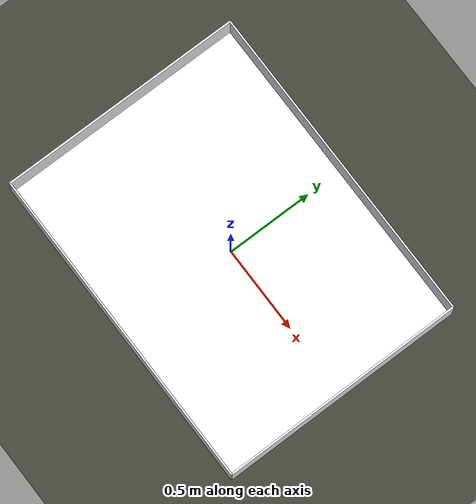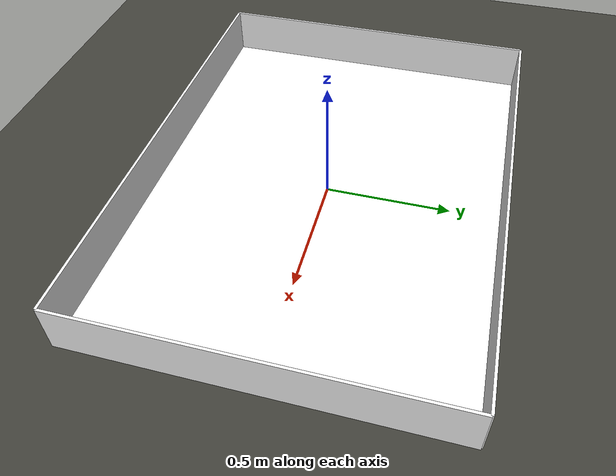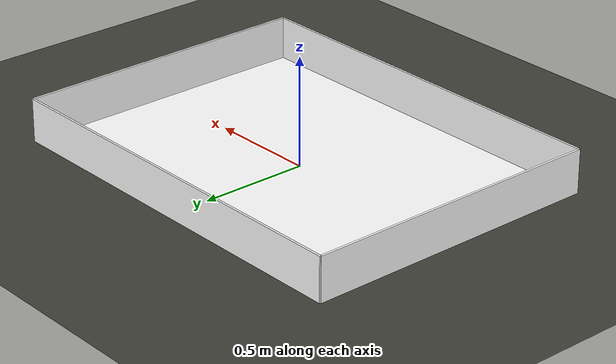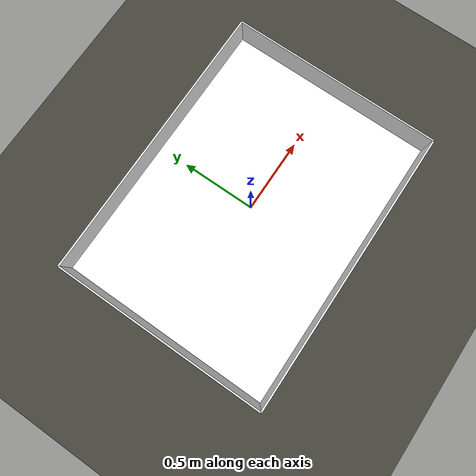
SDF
<?xml version="1.0"?>
<sdf version="1.9">
  <world name="araseo_minicity_world">

    <physics name="1ms" type="ignored">
      <max_step_size>0.001</max_step_size>
      <real_time_factor>1.0</real_time_factor>
    </physics>

    <plugin filename="gz-sim-physics-system" name="gz::sim::systems::Physics"/>
    <plugin filename="gz-sim-scene-broadcaster-system" name="gz::sim::systems::SceneBroadcaster"/>
    <plugin filename="gz-sim-user-commands-system" name="gz::sim::systems::UserCommands"/>
    <plugin filename="gz-sim-sensors-system" name="gz::sim::systems::Sensors">
      <render_engine>ogre2</render_engine>
    </plugin>
    <plugin filename="gz-sim-imu-system" name="gz::sim::systems::Imu"/>
    <plugin filename="gz-sim-contact-system" name="gz::sim::systems::Contact"/>

    <light type="directional" name="sun">
      <cast_shadows>false</cast_shadows>
      <pose>0 0 5 0 0 0</pose>
      <diffuse>0.9 0.9 0.9 1</diffuse>
      <specular>0.1 0.1 0.1 1</specular>
      <direction>0 0 -1</direction>
    </light>
    <light type="directional" name="fill">
      <cast_shadows>false</cast_shadows>
      <pose>0 0 3 0 0 0</pose>
      <diffuse>0.4 0.4 0.4 1</diffuse>
      <specular>0 0 0 1</specular>
      <direction>0 0 -1</direction>
    </light>

    <scene>
      <ambient>0.6 0.6 0.6 1</ambient>
      <background>0.7 0.75 0.8 1</background>
    </scene>

    <gui fullscreen="0">
      <camera name="user_camera">
        <pose>0 0 2.5 0 1.5708 0</pose>
      </camera>
    </gui>

    <model name="ground_plane">
      <static>true</static>
      <link name="link">
        <collision name="col">
          <geometry><plane><normal>0 0 1</normal><size>10 10</size></plane></geometry>
        </collision>
        <visual name="vis">
          <geometry><plane><normal>0 0 1</normal><size>10 10</size></plane></geometry>
          <material><ambient>0.25 0.25 0.22 1</ambient><diffuse>0.25 0.25 0.22 1</diffuse></material>
        </visual>
      </link>
    </model>

    <include>
      <uri>model://minicity_floor</uri>
      <name>minicity_floor</name>
      <pose>0 0 0.001 0 0 0</pose>
    </include>

    <model name="wall_n">
      <static>true</static>
      <pose>0 0.700 0.10 0 0 0</pose>
      <link name="l">
        <collision name="c"><geometry><box><size>1.860 0.01 0.200</size></box></geometry></collision>
        <visual name="v"><geometry><box><size>1.860 0.01 0.200</size></box></geometry>
          <material>
            <ambient>1 1 1 1</ambient><diffuse>1 1 1 1</diffuse><specular>0 0 0 1</specular>
            <pbr><metal>
              <albedo_map>model://minicity_walls/materials/wall_n_street.png</albedo_map>
              <roughness>1.0</roughness><metalness>0.0</metalness>
            </metal></pbr>
          </material>
        </visual>
      </link>
    </model>
    <model name="wall_s">
      <static>true</static>
      <pose>0 -0.700 0.10 0 0 0</pose>
      <link name="l">
        <collision name="c"><geometry><box><size>1.860 0.01 0.200</size></box></geometry></collision>
        <visual name="v"><geometry><box><size>1.860 0.01 0.200</size></box></geometry>
          <material>
            <ambient>1 1 1 1</ambient><diffuse>1 1 1 1</diffuse><specular>0 0 0 1</specular>
            <pbr><metal>
              <albedo_map>model://minicity_walls/materials/wall_s_street.png</albedo_map>
              <roughness>1.0</roughness><metalness>0.0</metalness>
            </metal></pbr>
          </material>
        </visual>
      </link>
    </model>
    <model name="wall_e">
      <static>true</static>
      <pose>0.930 0 0.10 0 0 0</pose>
      <link name="l">
        <collision name="c"><geometry><box><size>0.01 1.400 0.200</size></box></geometry></collision>
        <visual name="v"><geometry><box><size>0.01 1.400 0.200</size></box></geometry>
          <material>
            <ambient>1 1 1 1</ambient><diffuse>1 1 1 1</diffuse><specular>0 0 0 1</specular>
            <pbr><metal>
              <albedo_map>model://minicity_walls/materials/wall_e_street.png</albedo_map>
              <roughness>1.0</roughness><metalness>0.0</metalness>
            </metal></pbr>
          </material>
        </visual>
      </link>
    </model>
    <model name="wall_w">
      <static>true</static>
      <pose>-0.930 0 0.10 0 0 0</pose>
      <link name="l">
        <collision name="c"><geometry><box><size>0.01 1.400 0.200</size></box></geometry></collision>
        <visual name="v"><geometry><box><size>0.01 1.400 0.200</size></box></geometry>
          <material>
            <ambient>1 1 1 1</ambient><diffuse>1 1 1 1</diffuse><specular>0 0 0 1</specular>
            <pbr><metal>
              <albedo_map>model://minicity_walls/materials/wall_w_street.png</albedo_map>
              <roughness>1.0</roughness><metalness>0.0</metalness>
            </metal></pbr>
          </material>
        </visual>
      </link>
    </model>

  </world>
</sdf>

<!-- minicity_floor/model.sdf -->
<sdf version="1.9">
  <model name="minicity_floor">
    <static>true</static>
    <link name="floor_link">
      <collision name="floor_collision">
        <geometry>
          <plane>
            <normal>0 0 1</normal>
            <size>1.860 1.400</size>
          </plane>
        </geometry>
      </collision>

      <visual name="floor_visual">
        <geometry>
          <plane>
            <normal>0 0 1</normal>
            <size>1.860 1.400</size>
          </plane>
        </geometry>
        <material>
          <ambient>1 1 1 1</ambient>
          <diffuse>1 1 1 1</diffuse>
          <specular>0.05 0.05 0.05 1</specular>
          <pbr>
            <metal>
              <albedo_map>model://minicity_floor/materials/minicity_texture.png</albedo_map>
              <roughness>1.0</roughness>
              <metalness>0.0</metalness>
            </metal>
          </pbr>
        </material>
      </visual>
    </link>
  </model>
</sdf>
